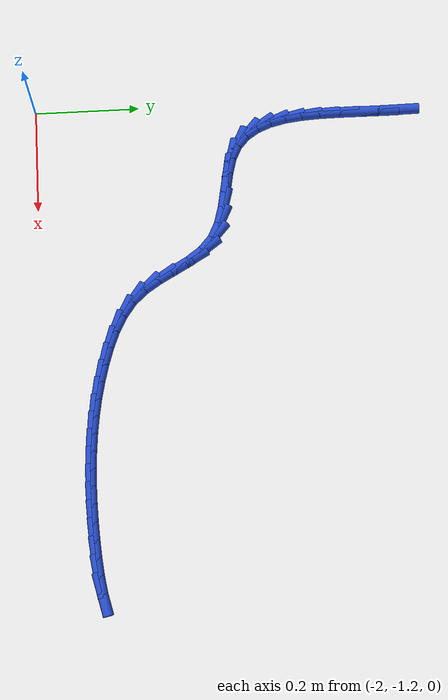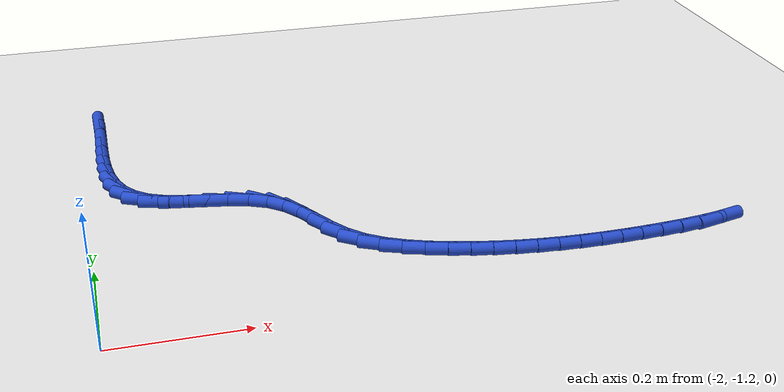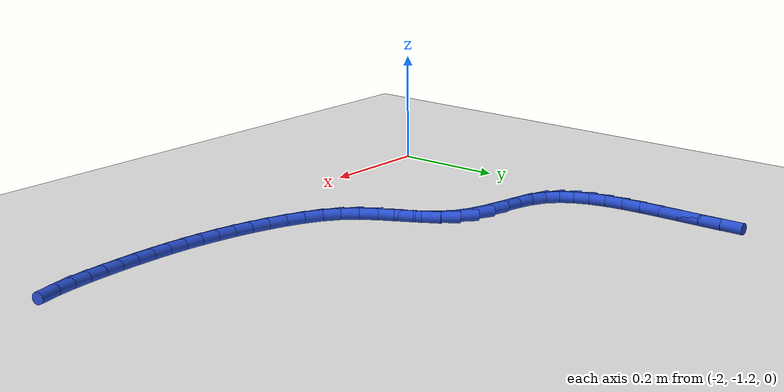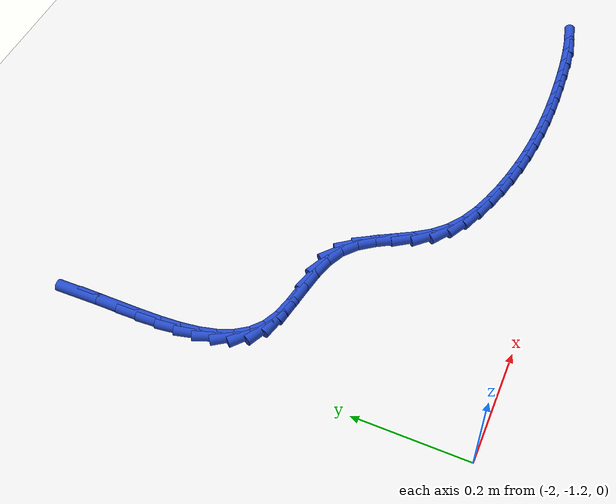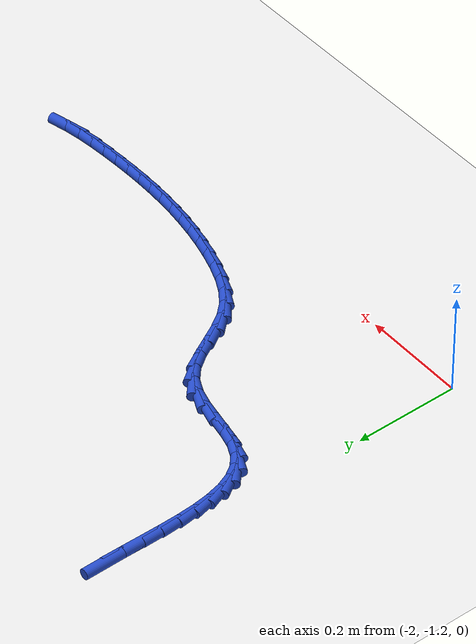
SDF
<sdf version="1.6">
 <world name="default">
  <model name="ground_plane">
   <static>1</static>
   <link name="link">
    <collision name="collision">
     <geometry><plane><normal>0 0 1</normal><size>100 100</size></plane></geometry>
     <surface><friction><ode><mu>100</mu><mu2>50</mu2></ode></friction></surface>
    </collision>
    <visual name="visual">
     <cast_shadows>0</cast_shadows>
     <geometry><plane><normal>0 0 1</normal><size>100 100</size></plane></geometry>
     <material>
      <script><uri>file://media/materials/scripts/gazebo.material</uri><name>Gazebo/WhiteGlow</name></script>
     </material>
    </visual>
   </link>
  </model>
  <model name="line">
   <link name="link_144">
    <pose>-1.9686038055520272 -0.499243961922485 0.01 0 1.57 -1.5585734350463638</pose>
    <collision name="collision">
     <geometry><cylinder><radius>0.01</radius><length>0.08</length></cylinder></geometry>
    </collision>
    <visual name="visual">
     <material>
      <script><name>Gazebo/Blue</name><uri>file://media/materials/scripts/gazebo.material</uri></script>
     </material>
     <geometry><cylinder><radius>0.01</radius><length>0.08</length></cylinder></geometry>
    </visual>
   </link>
   <link name="link_145">
    <pose>-1.9681304442679302 -0.5379694714298274 0.01 0 1.57 1.5653314335918063</pose>
    <collision name="collision">
     <geometry><cylinder><radius>0.01</radius><length>0.08</length></cylinder></geometry>
    </collision>
    <visual name="visual">
     <material>
      <script><name>Gazebo/Blue</name><uri>file://media/materials/scripts/gazebo.material</uri></script>
     </material>
     <geometry><cylinder><radius>0.01</radius><length>0.08</length></cylinder></geometry>
    </visual>
   </link>
   <link name="link_146">
    <pose>-1.9683415265769895 -0.5765942349672574 0.01 0 1.57 1.5658942800218143</pose>
    <collision name="collision">
     <geometry><cylinder><radius>0.01</radius><length>0.08</length></cylinder></geometry>
    </collision>
    <visual name="visual">
     <material>
      <script><name>Gazebo/Blue</name><uri>file://media/materials/scripts/gazebo.material</uri></script>
     </material>
     <geometry><cylinder><radius>0.01</radius><length>0.08</length></cylinder></geometry>
    </visual>
   </link>
   <link name="link_147">
    <pose>-1.9685276119794275 -0.6145546871011488 0.01 0 1.57 -1.5558692145182476</pose>
    <collision name="collision">
     <geometry><cylinder><radius>0.01</radius><length>0.08</length></cylinder></geometry>
    </collision>
    <visual name="visual">
     <material>
      <script><name>Gazebo/Blue</name><uri>file://media/materials/scripts/gazebo.material</uri></script>
     </material>
     <geometry><cylinder><radius>0.01</radius><length>0.08</length></cylinder></geometry>
    </visual>
   </link>
   <link name="link_148">
    <pose>-1.9679792599754677 -0.6512872623978736 0.01 0 1.57 -1.5138412401788848</pose>
    <collision name="collision">
     <geometry><cylinder><radius>0.01</radius><length>0.08</length></cylinder></geometry>
    </collision>
    <visual name="visual">
     <material>
      <script><name>Gazebo/Blue</name><uri>file://media/materials/scripts/gazebo.material</uri></script>
     </material>
     <geometry><cylinder><radius>0.01</radius><length>0.08</length></cylinder></geometry>
    </visual>
   </link>
   <link name="link_149">
    <pose>-1.9659870300653322 -0.6862283954238058 0.01 0 1.57 -1.4442578547287315</pose>
    <collision name="collision">
     <geometry><cylinder><radius>0.01</radius><length>0.08</length></cylinder></geometry>
    </collision>
    <visual name="visual">
     <material>
      <script><name>Gazebo/Blue</name><uri>file://media/materials/scripts/gazebo.material</uri></script>
     </material>
     <geometry><cylinder><radius>0.01</radius><length>0.08</length></cylinder></geometry>
    </visual>
   </link>
   <link name="link_150">
    <pose>-1.9618414817492438 -0.718814520745319 0.01 0 1.57 -1.3388209297360705</pose>
    <collision name="collision">
     <geometry><cylinder><radius>0.01</radius><length>0.08</length></cylinder></geometry>
    </collision>
    <visual name="visual">
     <material>
      <script><name>Gazebo/Blue</name><uri>file://media/materials/scripts/gazebo.material</uri></script>
     </material>
     <geometry><cylinder><radius>0.01</radius><length>0.08</length></cylinder></geometry>
    </visual>
   </link>
   <link name="link_151">
    <pose>-1.954833174527425 -0.7484820729287863 0.01 0 1.57 -1.1867939246012584</pose>
    <collision name="collision">
     <geometry><cylinder><radius>0.01</radius><length>0.08</length></cylinder></geometry>
    </collision>
    <visual name="visual">
     <material>
      <script><name>Gazebo/Blue</name><uri>file://media/materials/scripts/gazebo.material</uri></script>
     </material>
     <geometry><cylinder><radius>0.01</radius><length>0.08</length></cylinder></geometry>
    </visual>
   </link>
   <link name="link_152">
    <pose>-1.9442526679000989 -0.7746674865405813 0.01 0 1.57 -0.979600375900107</pose>
    <collision name="collision">
     <geometry><cylinder><radius>0.01</radius><length>0.08</length></cylinder></geometry>
    </collision>
    <visual name="visual">
     <material>
      <script><name>Gazebo/Blue</name><uri>file://media/materials/scripts/gazebo.material</uri></script>
     </material>
     <geometry><cylinder><radius>0.01</radius><length>0.08</length></cylinder></geometry>
    </visual>
   </link>
   <link name="link_153">
    <pose>-1.9293905213674885 -0.7968071961470773 0.01 0 1.57 -0.723344204084351</pose>
    <collision name="collision">
     <geometry><cylinder><radius>0.01</radius><length>0.08</length></cylinder></geometry>
    </collision>
    <visual name="visual">
     <material>
      <script><name>Gazebo/Blue</name><uri>file://media/materials/scripts/gazebo.material</uri></script>
     </material>
     <geometry><cylinder><radius>0.01</radius><length>0.08</length></cylinder></geometry>
    </visual>
   </link>
   <link name="link_154">
    <pose>-1.9095372944298155 -0.8143376363146475 0.01 0 1.57 -0.4528105908527148</pose>
    <collision name="collision">
     <geometry><cylinder><radius>0.01</radius><length>0.08</length></cylinder></geometry>
    </collision>
    <visual name="visual">
     <material>
      <script><name>Gazebo/Blue</name><uri>file://media/materials/scripts/gazebo.material</uri></script>
     </material>
     <geometry><cylinder><radius>0.01</radius><length>0.08</length></cylinder></geometry>
    </visual>
   </link>
   <link name="link_155">
    <pose>-1.8840341916881604 -0.8267455641765905 0.01 0 1.57 -0.26001960182182937</pose>
    <collision name="collision">
     <geometry><cylinder><radius>0.01</radius><length>0.08</length></cylinder></geometry>
    </collision>
    <visual name="visual">
     <material>
      <script><name>Gazebo/Blue</name><uri>file://media/materials/scripts/gazebo.material</uri></script>
     </material>
     <geometry><cylinder><radius>0.01</radius><length>0.08</length></cylinder></geometry>
    </visual>
   </link>
   <link name="link_156">
    <pose>-1.8535649175772673 -0.8348516869735659 0.01 0 1.57 -0.18014767462273812</pose>
    <collision name="collision">
     <geometry><cylinder><radius>0.01</radius><length>0.08</length></cylinder></geometry>
    </collision>
    <visual name="visual">
     <material>
      <script><name>Gazebo/Blue</name><uri>file://media/materials/scripts/gazebo.material</uri></script>
     </material>
     <geometry><cylinder><radius>0.01</radius><length>0.08</length></cylinder></geometry>
    </visual>
   </link>
   <link name="link_157">
    <pose>-1.820262489573302 -0.8409167950201624 0.01 0 1.57 -0.18519134777163893</pose>
    <collision name="collision">
     <geometry><cylinder><radius>0.01</radius><length>0.08</length></cylinder></geometry>
    </collision>
    <visual name="visual">
     <material>
      <script><name>Gazebo/Blue</name><uri>file://media/materials/scripts/gazebo.material</uri></script>
     </material>
     <geometry><cylinder><radius>0.01</radius><length>0.08</length></cylinder></geometry>
    </visual>
   </link>
   <link name="link_158">
    <pose>-1.7863319721513335 -0.8472732667976915 0.01 0 1.57 -0.27074938987106234</pose>
    <collision name="collision">
     <geometry><cylinder><radius>0.01</radius><length>0.08</length></cylinder></geometry>
    </collision>
    <visual name="visual">
     <material>
      <script><name>Gazebo/Blue</name><uri>file://media/materials/scripts/gazebo.material</uri></script>
     </material>
     <geometry><cylinder><radius>0.01</radius><length>0.08</length></cylinder></geometry>
    </visual>
   </link>
   <link name="link_159">
    <pose>-1.7539784297864291 -0.8562534807874652 0.01 0 1.57 -0.45381618756582087</pose>
    <collision name="collision">
     <geometry><cylinder><radius>0.01</radius><length>0.08</length></cylinder></geometry>
    </collision>
    <visual name="visual">
     <material>
      <script><name>Gazebo/Blue</name><uri>file://media/materials/scripts/gazebo.material</uri></script>
     </material>
     <geometry><cylinder><radius>0.01</radius><length>0.08</length></cylinder></geometry>
    </visual>
   </link>
   <link name="link_160">
    <pose>-1.7254069269536556 -0.8701898154707942 0.01 0 1.57 -0.7287809434453373</pose>
    <collision name="collision">
     <geometry><cylinder><radius>0.01</radius><length>0.08</length></cylinder></geometry>
    </collision>
    <visual name="visual">
     <material>
      <script><name>Gazebo/Blue</name><uri>file://media/materials/scripts/gazebo.material</uri></script>
     </material>
     <geometry><cylinder><radius>0.01</radius><length>0.08</length></cylinder></geometry>
    </visual>
   </link>
   <link name="link_161">
    <pose>-1.7022898371799222 -0.8908270090183954 0.01 0 1.57 -0.9444730975898357</pose>
    <collision name="collision">
     <geometry><cylinder><radius>0.01</radius><length>0.08</length></cylinder></geometry>
    </collision>
    <visual name="visual">
     <material>
      <script><name>Gazebo/Blue</name><uri>file://media/materials/scripts/gazebo.material</uri></script>
     </material>
     <geometry><cylinder><radius>0.01</radius><length>0.08</length></cylinder></geometry>
    </visual>
   </link>
   <link name="link_162">
    <pose>-1.6834904779740065 -0.9168109773726801 0.01 0 1.57 -1.0518333791178707</pose>
    <collision name="collision">
     <geometry><cylinder><radius>0.01</radius><length>0.08</length></cylinder></geometry>
    </collision>
    <visual name="visual">
     <material>
      <script><name>Gazebo/Blue</name><uri>file://media/materials/scripts/gazebo.material</uri></script>
     </material>
     <geometry><cylinder><radius>0.01</radius><length>0.08</length></cylinder></geometry>
    </visual>
   </link>
   <link name="link_163">
    <pose>-1.6669495730833397 -0.945769873200099 0.01 0 1.57 -1.0657865588741378</pose>
    <collision name="collision">
     <geometry><cylinder><radius>0.01</radius><length>0.08</length></cylinder></geometry>
    </collision>
    <visual name="visual">
     <material>
      <script><name>Gazebo/Blue</name><uri>file://media/materials/scripts/gazebo.material</uri></script>
     </material>
     <geometry><cylinder><radius>0.01</radius><length>0.08</length></cylinder></geometry>
    </visual>
   </link>
   <link name="link_164">
    <pose>-1.650607298536306 -0.9753312449484851 0.01 0 1.57 -0.990911582815385</pose>
    <collision name="collision">
     <geometry><cylinder><radius>0.01</radius><length>0.08</length></cylinder></geometry>
    </collision>
    <visual name="visual">
     <material>
      <script><name>Gazebo/Blue</name><uri>file://media/materials/scripts/gazebo.material</uri></script>
     </material>
     <geometry><cylinder><radius>0.01</radius><length>0.08</length></cylinder></geometry>
    </visual>
   </link>
   <link name="link_165">
    <pose>-1.6324038303612913 -1.0031226410656704 0.01 0 1.57 -0.8234295650632251</pose>
    <collision name="collision">
     <geometry><cylinder><radius>0.01</radius><length>0.08</length></cylinder></geometry>
    </collision>
    <visual name="visual">
     <material>
      <script><name>Gazebo/Blue</name><uri>file://media/materials/scripts/gazebo.material</uri></script>
     </material>
     <geometry><cylinder><radius>0.01</radius><length>0.08</length></cylinder></geometry>
    </visual>
   </link>
   <link name="link_166">
    <pose>-1.6103875584049454 -1.0268806114219418 0.01 0 1.57 -0.6332336646474475</pose>
    <collision name="collision">
     <geometry><cylinder><radius>0.01</radius><length>0.08</length></cylinder></geometry>
    </collision>
    <visual name="visual">
     <material>
      <script><name>Gazebo/Blue</name><uri>file://media/materials/scripts/gazebo.material</uri></script>
     </material>
     <geometry><cylinder><radius>0.01</radius><length>0.08</length></cylinder></geometry>
    </visual>
   </link>
   <link name="link_167">
    <pose>-1.584290690032939 -1.0460377786042576 0.01 0 1.57 -0.48461120342084785</pose>
    <collision name="collision">
     <geometry><cylinder><radius>0.01</radius><length>0.08</length></cylinder></geometry>
    </collision>
    <visual name="visual">
     <material>
      <script><name>Gazebo/Blue</name><uri>file://media/materials/scripts/gazebo.material</uri></script>
     </material>
     <geometry><cylinder><radius>0.01</radius><length>0.08</length></cylinder></geometry>
    </visual>
   </link>
   <link name="link_168">
    <pose>-1.5551755034244414 -1.0613665165636863 0.01 0 1.57 -0.3775912577919411</pose>
    <collision name="collision">
     <geometry><cylinder><radius>0.01</radius><length>0.08</length></cylinder></geometry>
    </collision>
    <visual name="visual">
     <material>
      <script><name>Gazebo/Blue</name><uri>file://media/materials/scripts/gazebo.material</uri></script>
     </material>
     <geometry><cylinder><radius>0.01</radius><length>0.08</length></cylinder></geometry>
    </visual>
   </link>
   <link name="link_169">
    <pose>-1.5241405054682027 -1.073675691641466 0.01 0 1.57 -0.3068177966829953</pose>
    <collision name="collision">
     <geometry><cylinder><radius>0.01</radius><length>0.08</length></cylinder></geometry>
    </collision>
    <visual name="visual">
     <material>
      <script><name>Gazebo/Blue</name><uri>file://media/materials/scripts/gazebo.material</uri></script>
     </material>
     <geometry><cylinder><radius>0.01</radius><length>0.08</length></cylinder></geometry>
    </visual>
   </link>
   <link name="link_170">
    <pose>-1.4922782884344208 -1.0837703537343997 0.01 0 1.57 -0.2576005308238239</pose>
    <collision name="collision">
     <geometry><cylinder><radius>0.01</radius><length>0.08</length></cylinder></geometry>
    </collision>
    <visual name="visual">
     <material>
      <script><name>Gazebo/Blue</name><uri>file://media/materials/scripts/gazebo.material</uri></script>
     </material>
     <geometry><cylinder><radius>0.01</radius><length>0.08</length></cylinder></geometry>
    </visual>
   </link>
   <link name="link_171">
    <pose>-1.4602843023297114 -1.0921992942216765 0.01 0 1.57 -0.21186286031866985</pose>
    <collision name="collision">
     <geometry><cylinder><radius>0.01</radius><length>0.08</length></cylinder></geometry>
    </collision>
    <visual name="visual">
     <material>
      <script><name>Gazebo/Blue</name><uri>file://media/materials/scripts/gazebo.material</uri></script>
     </material>
     <geometry><cylinder><radius>0.01</radius><length>0.08</length></cylinder></geometry>
    </visual>
   </link>
   <link name="link_172">
    <pose>-1.4282128097587241 -1.0990975743202638 0.01 0 1.57 -0.1683622517169105</pose>
    <collision name="collision">
     <geometry><cylinder><radius>0.01</radius><length>0.08</length></cylinder></geometry>
    </collision>
    <visual name="visual">
     <material>
      <script><name>Gazebo/Blue</name><uri>file://media/materials/scripts/gazebo.material</uri></script>
     </material>
     <geometry><cylinder><radius>0.01</radius><length>0.08</length></cylinder></geometry>
    </visual>
   </link>
   <link name="link_173">
    <pose>-1.396059810781007 -1.1045626609772419 0.01 0 1.57 -0.1273941542789187</pose>
    <collision name="collision">
     <geometry><cylinder><radius>0.01</radius><length>0.08</length></cylinder></geometry>
    </collision>
    <visual name="visual">
     <material>
      <script><name>Gazebo/Blue</name><uri>file://media/materials/scripts/gazebo.material</uri></script>
     </material>
     <geometry><cylinder><radius>0.01</radius><length>0.08</length></cylinder></geometry>
    </visual>
   </link>
   <link name="link_174">
    <pose>-1.3638213054561081 -1.1086920211396918 0.01 0 1.57 -0.08919292596715822</pose>
    <collision name="collision">
     <geometry><cylinder><radius>0.01</radius><length>0.08</length></cylinder></geometry>
    </collision>
    <visual name="visual">
     <material>
      <script><name>Gazebo/Blue</name><uri>file://media/materials/scripts/gazebo.material</uri></script>
     </material>
     <geometry><cylinder><radius>0.01</radius><length>0.08</length></cylinder></geometry>
    </visual>
   </link>
   <link name="link_175">
    <pose>-1.331493293843576 -1.1115831217546939 0.01 0 1.57 -0.05393364287586956</pose>
    <collision name="collision">
     <geometry><cylinder><radius>0.01</radius><length>0.08</length></cylinder></geometry>
    </collision>
    <visual name="visual">
     <material>
      <script><name>Gazebo/Blue</name><uri>file://media/materials/scripts/gazebo.material</uri></script>
     </material>
     <geometry><cylinder><radius>0.01</radius><length>0.08</length></cylinder></geometry>
    </visual>
   </link>
   <link name="link_176">
    <pose>-1.2990717760029582 -1.1133334297693291 0.01 0 1.57 -0.021737153212786815</pose>
    <collision name="collision">
     <geometry><cylinder><radius>0.01</radius><length>0.08</length></cylinder></geometry>
    </collision>
    <visual name="visual">
     <material>
      <script><name>Gazebo/Blue</name><uri>file://media/materials/scripts/gazebo.material</uri></script>
     </material>
     <geometry><cylinder><radius>0.01</radius><length>0.08</length></cylinder></geometry>
    </visual>
   </link>
   <link name="link_177">
    <pose>-1.2665527519938031 -1.1140404121306786 0.01 0 1.57 0.007322752703388934</pose>
    <collision name="collision">
     <geometry><cylinder><radius>0.01</radius><length>0.08</length></cylinder></geometry>
    </collision>
    <visual name="visual">
     <material>
      <script><name>Gazebo/Blue</name><uri>file://media/materials/scripts/gazebo.material</uri></script>
     </material>
     <geometry><cylinder><radius>0.01</radius><length>0.08</length></cylinder></geometry>
    </visual>
   </link>
   <link name="link_178">
    <pose>-1.2339322218756594 -1.1138015357858226 0.01 0 1.57 0.033211120484050435</pose>
    <collision name="collision">
     <geometry><cylinder><radius>0.01</radius><length>0.08</length></cylinder></geometry>
    </collision>
    <visual name="visual">
     <material>
      <script><name>Gazebo/Blue</name><uri>file://media/materials/scripts/gazebo.material</uri></script>
     </material>
     <geometry><cylinder><radius>0.01</radius><length>0.08</length></cylinder></geometry>
    </visual>
   </link>
   <link name="link_179">
    <pose>-1.2012061857080754 -1.1127142676818425 0.01 0 1.57 0.05592343303236486</pose>
    <collision name="collision">
     <geometry><cylinder><radius>0.01</radius><length>0.08</length></cylinder></geometry>
    </collision>
    <visual name="visual">
     <material>
      <script><name>Gazebo/Blue</name><uri>file://media/materials/scripts/gazebo.material</uri></script>
     </material>
     <geometry><cylinder><radius>0.01</radius><length>0.08</length></cylinder></geometry>
    </visual>
   </link>
   <link name="link_180">
    <pose>-1.1683706435505994 -1.1108760747658186 0.01 0 1.57 0.07711354542699951</pose>
    <collision name="collision">
     <geometry><cylinder><radius>0.01</radius><length>0.08</length></cylinder></geometry>
    </collision>
    <visual name="visual">
     <material>
      <script><name>Gazebo/Blue</name><uri>file://media/materials/scripts/gazebo.material</uri></script>
     </material>
     <geometry><cylinder><radius>0.01</radius><length>0.08</length></cylinder></geometry>
    </visual>
   </link>
   <link name="link_181">
    <pose>-1.1354452391786805 -1.1083320353907467 0.01 0 1.57 0.1098066096056481</pose>
    <collision name="collision">
     <geometry><cylinder><radius>0.01</radius><length>0.08</length></cylinder></geometry>
    </collision>
    <visual name="visual">
     <material>
      <script><name>Gazebo/Blue</name><uri>file://media/materials/scripts/gazebo.material</uri></script>
     </material>
     <geometry><cylinder><radius>0.01</radius><length>0.08</length></cylinder></geometry>
    </visual>
   </link>
   <link name="link_182">
    <pose>-1.102635756649815 -1.1047147873389664 0.01 0 1.57 0.16073395050968403</pose>
    <collision name="collision">
     <geometry><cylinder><radius>0.01</radius><length>0.08</length></cylinder></geometry>
    </collision>
    <visual name="visual">
     <material>
      <script><name>Gazebo/Blue</name><uri>file://media/materials/scripts/gazebo.material</uri></script>
     </material>
     <geometry><cylinder><radius>0.01</radius><length>0.08</length></cylinder></geometry>
    </visual>
   </link>
   <link name="link_183">
    <pose>-1.070236087450437 -1.0994617442432078 0.01 0 1.57 0.23093641932613393</pose>
    <collision name="collision">
     <geometry><cylinder><radius>0.01</radius><length>0.08</length></cylinder></geometry>
    </collision>
    <visual name="visual">
     <material>
      <script><name>Gazebo/Blue</name><uri>file://media/materials/scripts/gazebo.material</uri></script>
     </material>
     <geometry><cylinder><radius>0.01</radius><length>0.08</length></cylinder></geometry>
    </visual>
   </link>
  </model>
 </world>
</sdf>
